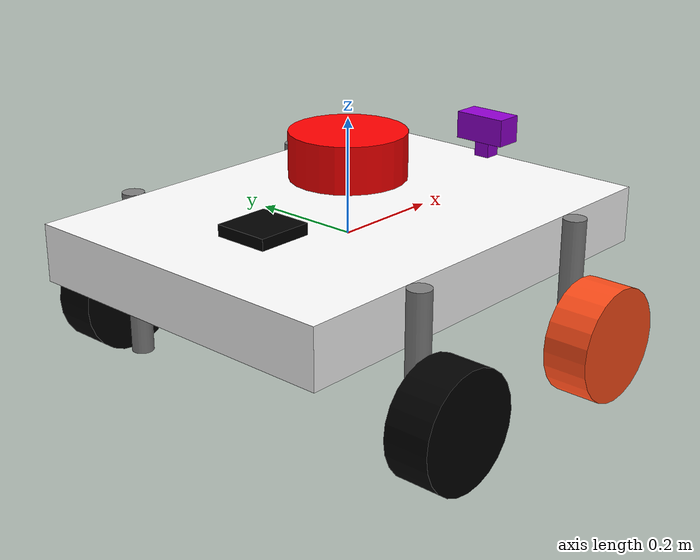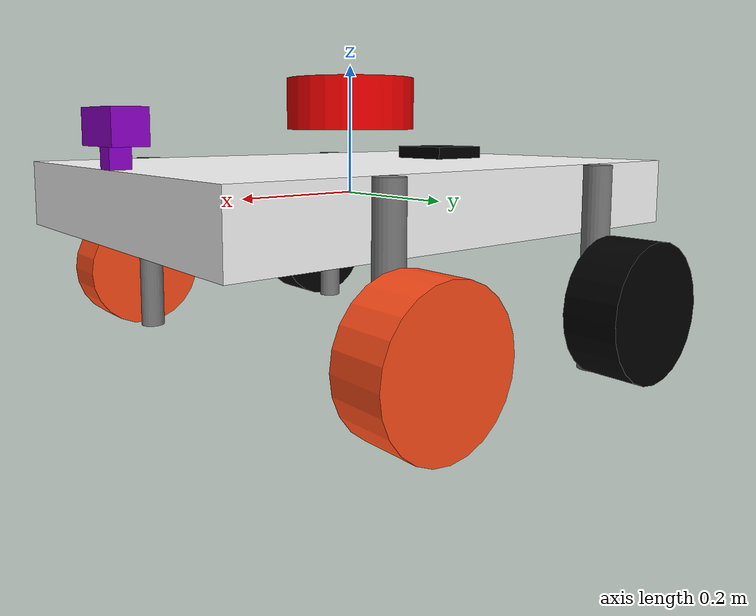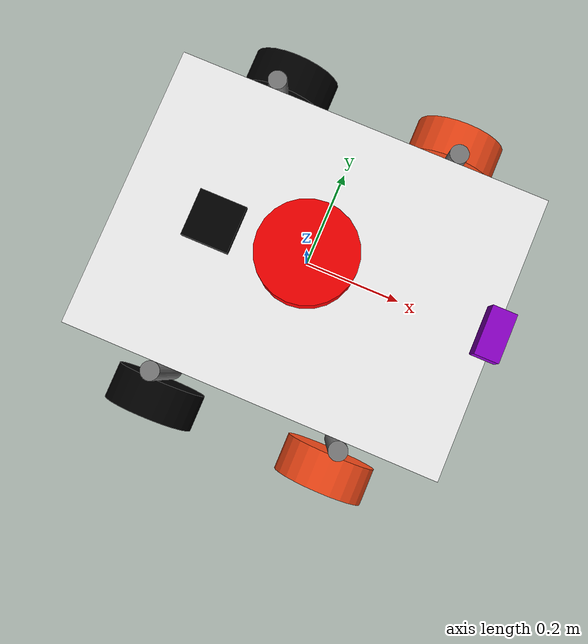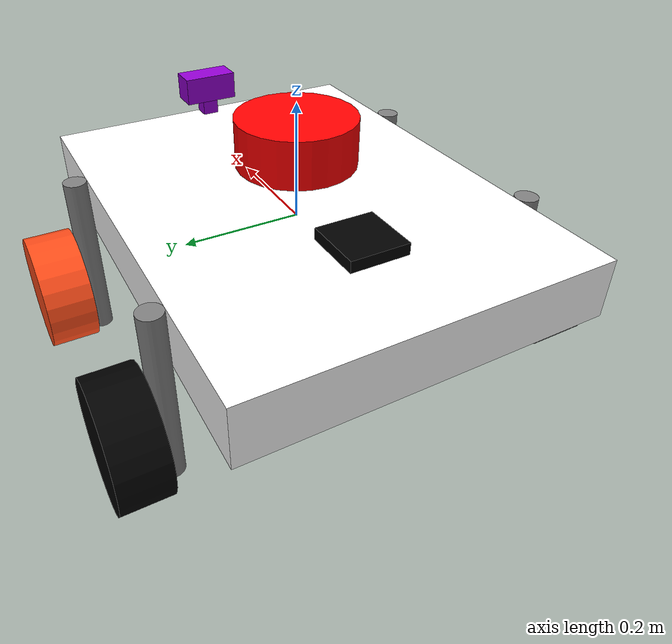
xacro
<?xml version="1.0"?>
<robot xmlns:xacro="http://www.ros.org/wiki/xacro" name="zulu_robot">

    <!-- Example link -->
    <xacro:include filename="$(find charlie_description)/macros/properties.xacro"/>
    <xacro:include filename="robot_core.xacro"/>
    <!-- Sensors -->
    <xacro:include filename="$(find charlie_description)/sensors/lidar.xacro"/><!-- Lidar sensor -->

    <xacro:include filename="$(find charlie_description)/sensors/camera.xacro"/> <!-- Camera sensor -->

    <xacro:include filename="$(find charlie_description)/sensors/imu.xacro"/> <!-- Camera sensor -->

    <!-- ros2_control -->
    <xacro:include filename="ros2_control.xacro"/>

</robot>

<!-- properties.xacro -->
<robot xmlns:xacro="http://www.ros.org/wiki/xacro">
    <!-- Color Definitions -->
    <material name="white">
        <color rgba= "1 1 1 1"/>
    </material>

    <material name="orange">
        <color rgba= "1 0.3 0.1 1"/>
    </material>

    <material name="blue">
        <color rgba= "0.2 0.2 1 1"/>
    </material>

    <material name="black">
        <color rgba= "0 0 0 1"/>
    </material>

    <material name="red">
        <color rgba= "1 0 0 1"/>
    </material>

    <material name="purple">
        <color rgba= "0.58 0.0 0.827 1"/>
    </material>

    <material name="gray">
        <color rgba= "0.5 0.5 0.5 1"/>
    </material>

</robot>

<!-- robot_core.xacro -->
<robot xmlns:xacro="http://www.ros.org/wiki/xacro">

    <!-- Include macros -->
    <xacro:include filename="$(find charlie_description)/macros/inertial_macros.xacro"/>

    <!-- Properties -->
    <xacro:property name="scale" value="2"/>

    <!-- Camera dimensions -->
    <xacro:property name="cam_base_x" value="${scale*0.015}"/>
    <xacro:property name="cam_base_y" value="${scale*0.015}"/>
    <xacro:property name="cam_base_z" value="${scale*0.015}"/>

    <xacro:property name="cam_x" value="${scale*0.025}"/>
    <xacro:property name="cam_y" value="${scale*0.05}"/>
    <xacro:property name="cam_z" value="${scale*0.025}"/>

    <!-- Robot dimensions -->
    <xacro:property name="rad_w" value="${scale*0.05}"/> <!-- Wheel radius 2(scale)*0.05 = 0.10-->
    <xacro:property name="le_w" value="${scale*0.04}"/>
    <xacro:property name="ly" value="${scale*0.3}"/> <!-- For steering & traction track -->
    <xacro:property name="lx" value="${scale*0.4}"/> <!-- For wheelbase -->
    <xacro:property name="lz" value="${scale*0.05}"/>
    <xacro:property name="offset" value="${scale*0.1}"/> <!-- For wheelbase -->

    <!-- Steering components -->
    <xacro:property name="steering_r" value="${scale*0.01}"/> <!-- For steering & traction track -->
    <xacro:property name="steering_l" value="${scale*0.15}"/>

    <!-- IMU dimensions -->
    <xacro:property name="imu_lx" value="${scale*0.05}"/>
    <xacro:property name="imu_ly" value="${scale*0.05}"/>
    <xacro:property name="imu_lz" value="${scale*0.01}"/>

    <!-- Macros -->
    <xacro:macro name="wheel_macro" params="p_name p_radius p_length p_color p_mass">
        <link name="${p_name}">
            <visual>
                <geometry>
                    <cylinder radius="${p_radius}" length="${p_length}"/>
                </geometry>
                <material name="${p_color}"/>
                <origin xyz="0 0 0" rpy="0 0 0"/>
            </visual>
            <collision>
                <geometry>
                    <cylinder radius="${p_radius}" length="${p_length}"/>
                </geometry>
                <origin xyz="0 0 0" rpy="0 0 0"/>
            </collision>
            <xacro:inertial_cylinder mass="${p_mass}" length="${p_length}" radius="${p_radius}">
                <origin xyz="0 0 0" rpy="0 0 0"/>
            </xacro:inertial_cylinder>
        </link>
    </xacro:macro>

    <xacro:macro name="steering_macro" params="p_name p_radius p_length p_color p_mass">
        <link name="${p_name}">
            <visual>
                <origin xyz="0.0 0 0"/>
                <geometry>
                    <cylinder radius="${p_radius}" length="${p_length}"/>
                </geometry>
                <material name="${p_color}"/>
            </visual>
            <collision>
                <origin xyz="0 0 0"/>
                <geometry>
                    <cylinder radius="${p_radius}" length="${p_length}"/>
                </geometry>
            </collision>
            <xacro:inertial_cylinder mass="${p_mass}" length="${p_length}" radius="${p_radius}">
                <origin xyz="0 0 0" rpy="0 0 0"/>
            </xacro:inertial_cylinder>
        </link>
    </xacro:macro>

    <!-- Base Links -->
    <link name="base_link">
    </link>

    <!-- Chassis -->
    <link name="chassis">
        <visual>
            <origin xyz="0 0 0"/>
            <geometry>
                <box size="${lx} ${ly} ${lz}"/>
            </geometry>
            <material name="white"/>
        </visual>
        <collision>
            <origin xyz="0 0 0"/>
            <geometry>
               <box size="${lx} ${ly} ${lz}"/>
            </geometry>
        </collision>
        <xacro:inertial_box mass="5.0" x="${lx}" y="${ly}" z="${lz}">
            <origin xyz="0 0 0" rpy="0 0 0"/>
        </xacro:inertial_box>
    </link>

    <!-- Steering Links -->
    <xacro:steering_macro p_name="left_steering_link"
                         p_radius="${steering_r}"
                         p_length="${steering_l}"
                         p_color="gray"
                         p_mass="0.1"/>

    <xacro:steering_macro p_name="right_steering_link"
                         p_radius="${steering_r}"
                         p_length="${steering_l}"
                         p_color="gray"
                         p_mass="0.1"/>

    <xacro:steering_macro p_name="left_rear_steering_link"
                         p_radius="${steering_r}"
                         p_length="${steering_l}"
                         p_color="gray"
                         p_mass="0.1"/>

    <xacro:steering_macro p_name="right_rear_steering_link"
                         p_radius="${steering_r}"
                         p_length="${steering_l}"
                         p_color="gray"
                         p_mass="0.1"/>

    <!-- Wheel Links -->
    <xacro:wheel_macro p_name="left_front_wheel"
                      p_radius="${rad_w}"
                      p_length="${le_w}"
                      p_color="orange"
                      p_mass="1.0"/>

    <xacro:wheel_macro p_name="right_front_wheel"
                      p_radius="${rad_w}"
                      p_length="${le_w}"
                      p_color="orange"
                      p_mass="1.0"/>

    <xacro:wheel_macro p_name="left_rear_wheel"
                      p_radius="${rad_w}"
                      p_length="${le_w}"
                      p_color="black"
                      p_mass="1.0"/>

    <xacro:wheel_macro p_name="right_rear_wheel"
                      p_radius="${rad_w}"
                      p_length="${le_w}"
                      p_color="black"
                      p_mass="1.0"/>

    <!-- Joints -->
    <joint name="base_link_joint" type="fixed">
        <parent link="base_link"/>
        <child link="chassis"/>
        <origin xyz="0 0 0"/>
    </joint>

    <!-- Front Steering Joints -->
    <joint name="left_steering_wheel_joint" type="revolute"> <!-- Steering joint -->
        <parent link="chassis"/>
        <child link="left_steering_link"/>
        <origin xyz="${lx/2 - offset} ${ly/2+steering_r} -${lz}" rpy="0 0 0"/> <!-- For wheelbase --> <!-- For steering & traction track -->
        <axis xyz="0 0 1"/>
        <limit lower="-${pi/4}" upper="${pi/4}" effort="5.0" velocity="1.0"/>
        <dynamics damping="0.5" friction="0.0"/>
    </joint>

    <joint name="right_steering_wheel_joint" type="revolute"> <!-- Steering joint -->
        <parent link="chassis"/>
        <child link="right_steering_link"/>
        <origin xyz="${lx/2 - offset} -${ly/2 + steering_r} -${lz}" rpy="0 0 0"/> <!-- For steering & traction track -->
        <axis xyz="0 0 1"/>
        <limit lower="-${pi/4}" upper="${pi/4}" effort="5.0" velocity="1.0"/>
        <dynamics damping="0.5" friction="0.0"/>
    </joint>

    <!-- Rear Steering Joints (Fixed) -->
    <joint name="left_rear_steering_joint" type="fixed">
        <parent link="chassis"/>
        <child link="left_rear_steering_link"/>
        <origin xyz="-${lx/2-offset} ${ly/2+steering_r} -${lz}" rpy="0 0 0"/> <!-- For wheelbase --> <!-- For steering & traction track -->
    </joint>

    <joint name="right_rear_steering_joint" type="fixed">
        <parent link="chassis"/>
        <child link="right_rear_steering_link"/>
        <origin xyz="-${lx/2-offset} -${ly/2+steering_r} -${lz}" rpy="0 0 0"/> <!-- For wheelbase --> <!-- For steering & traction track -->
    </joint>

    <!-- Wheel Joints -->
    <joint name="left_front_wheel_joint" type="continuous">
        <parent link="left_steering_link"/>
        <child link="left_front_wheel"/>
        <origin xyz="0.0 ${le_w/2+steering_r} -${steering_l/2-rad_w}" rpy="${pi/2} 0 0"/>
        <axis xyz="0 0 -1"/>
        <dynamics damping="0.2" friction="0.0"/>
    </joint>

    <joint name="right_front_wheel_joint" type="continuous">
        <parent link="right_steering_link"/>
        <child link="right_front_wheel"/>
        <origin xyz="0.0 -${le_w/2+steering_r} -${steering_l/2-rad_w}" rpy="${pi/2} 0 0"/>
        <axis xyz="0 0 -1"/>
        <dynamics damping="0.2" friction="0.0"/>
    </joint>

    <joint name="left_rear_wheel_joint" type="continuous"> <!-- Traction joint -->
        <parent link="left_rear_steering_link"/>
        <child link="left_rear_wheel"/>
        <origin xyz="0.0 ${le_w/2+steering_r} -${steering_l/2-rad_w}" rpy="${pi/2} 0 0"/>
        <axis xyz="0 0 -1"/>
        <dynamics damping="0.2" friction="0.0"/>
    </joint>

    <joint name="right_rear_wheel_joint" type="continuous"> <!-- Traction joint -->
        <parent link="right_rear_steering_link"/>
        <child link="right_rear_wheel"/>
        <origin xyz="0.0 -${le_w/2+steering_r} -${steering_l/2-rad_w}" rpy="${pi/2} 0 0"/>
        <axis xyz="0 0 -1"/>
        <dynamics damping="0.2" friction="0.0"/>
    </joint>

</robot>

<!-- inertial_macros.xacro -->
<robot xmlns:xacro="http://www.ros.org/wiki/xacro" >

    <!-- Specify some standard inertial calculations https://en.wikipedia.org/wiki/List_of_moments_of_inertia -->
    <!-- These make use of xacro's mathematical functionality -->

    <xacro:macro name="inertial_sphere" params="mass radius *origin">
        <inertial>
            <xacro:insert_block name="origin"/>
            <mass value="${mass}" />
            <inertia ixx="${(2/5) * mass * (radius*radius)}" ixy="0.0" ixz="0.0"
                    iyy="${(2/5) * mass * (radius*radius)}" iyz="0.0"
                    izz="${(2/5) * mass * (radius*radius)}" />
        </inertial>
    </xacro:macro>

    <xacro:macro name="inertial_box" params="mass x y z *origin">
        <inertial>
            <xacro:insert_block name="origin"/>
            <mass value="${mass}" />
            <inertia ixx="${(1/12) * mass * (y*y+z*z)}" ixy="0.0" ixz="0.0"
                    iyy="${(1/12) * mass * (x*x+z*z)}" iyz="0.0"
                    izz="${(1/12) * mass * (x*x+y*y)}" />
        </inertial>
    </xacro:macro>

    <xacro:macro name="inertial_cylinder" params="mass length radius *origin">
        <inertial>
            <xacro:insert_block name="origin"/>
            <mass value="${mass}" />
            <inertia ixx="${(1/12) * mass * (3*radius*radius + length*length)}" ixy="0.0" ixz="0.0"
                    iyy="${(1/12) * mass * (3*radius*radius + length*length)}" iyz="0.0"
                    izz="${(1/2) * mass * (radius*radius)}" />
        </inertial>
    </xacro:macro>
</robot>

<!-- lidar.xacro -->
<robot xmlns:xacro="http://www.ros.org/wiki/xacro" >

    <!-- Lidar link -->
    <link name="lidar_link">
         <visual>
            <geometry>
                <cylinder radius="${rad_w}" length="${le_w}"/>
            </geometry>
            <material name="red"/>
        </visual>
        <collision>
            <geometry>
                <cylinder radius="${rad_w}" length="${le_w}"/>
            </geometry>
        </collision>
        <xacro:inertial_cylinder mass="0.1" length="${le_w}" radius="${rad_w}">
            <origin xyz="0 0 0" rpy="0 0 0"/>
        </xacro:inertial_cylinder>
    </link>

    <joint name="lidar_chassis_joint" type="fixed">
        <parent link="chassis"/>
        <child link="lidar_link"/>
        <origin xyz="0 0 ${lz+le_w/2}" rpy="0 0 0"/>
    </joint>

    <gazebo reference="lidar_link">
    <sensor name="lidar" type="gpu_lidar">
        <always_on>true</always_on>
        <update_rate>10</update_rate>
        <visualize>true</visualize>
        <topic>scan</topic>
        <gz_frame_id>lidar_link</gz_frame_id>

        <lidar>
        <scan>
            <horizontal>
            <samples>720</samples>
            <min_angle>-3.14159</min_angle>
            <max_angle>3.14159</max_angle>
            </horizontal>
        </scan>
        <range>
            <min>0.12</min>
            <max>12.0</max>
        </range>
        </lidar>
    </sensor>
    </gazebo>

</robot>

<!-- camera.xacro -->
<robot xmlns:xacro="http://www.ros.org/wiki/xacro" >

    <!-- camera_base link -->

    <link name="camera_base_link">
         <visual>
            <geometry>
                <box size="${cam_base_x} ${cam_base_y} ${cam_base_z}"/>
            </geometry>
            <material name="purple"/>
        </visual>
        <collision>
            <geometry>
                <box size="${cam_base_x} ${cam_base_y} ${cam_base_z}"/>
            </geometry>
        </collision>
        <xacro:inertial_box mass="0.1" x="${cam_base_x}" y="${cam_base_y}" z="${cam_base_z}">
            <origin xyz="0 0 0" rpy="0 0 0"/>
        </xacro:inertial_box>
    </link>

   <!-- camera link -->
    <link name="camera_link">
         <visual>
            <geometry>
                <box size="${cam_x} ${cam_y} ${cam_z}"/>
            </geometry>
            <material name="purple"/>
        </visual>
        <collision>
            <geometry>
                <box size="${cam_x} ${cam_y} ${cam_z}"/>
            </geometry>
        </collision>
        <xacro:inertial_box mass="0.1" x="${cam_x}" y="${cam_y}" z="${cam_z}">
            <origin xyz="0 0 0" rpy="0 0 0"/>
        </xacro:inertial_box>
    </link>

    <joint name="camera_camera_base_joint" type="fixed">
        <parent link="camera_base_link"/>
        <child link="camera_link"/>
        <origin xyz="0 0 ${cam_base_z/2+cam_z/2}" rpy="0 0 0"/>
    </joint>

    <joint name="camera_base_chassis_joint" type="fixed">
        <parent link="chassis"/>
        <child link="camera_base_link"/>
        <origin xyz="${lx/2-cam_base_x/2} 0 ${lz/2+cam_base_z/2}" rpy="0 0 0"/>
    </joint>

    <link name="camera_optical_link"/>

    <joint name="camera_camera_link_joint" type="fixed">
        <parent link="camera_link"/>
        <child link="camera_optical_link"/>
        <origin xyz="0 0 0" rpy="-${pi/2} 0 -${pi/2}"/>
    </joint>

    <!-- Gazebo Camera Sensor -->
    <gazebo reference="camera_link">
        <sensor name="camera" type="camera">
            <always_on>true</always_on>
            <update_rate>30.0</update_rate> <visualize>true</visualize>     <topic>camera/image_raw</topic> <gz_frame_id>camera_optical_link</gz_frame_id>

            <camera>
                <horizontal_fov>1.089</horizontal_fov> <image>
                    <width>640</width>
                    <height>480</height>
                    <format>R8G8B8</format>
                </image>
                <clip>
                    <near>0.05</near>
                    <far>8.0</far>
                </clip>
            </camera>
        </sensor>
    </gazebo>

</robot>

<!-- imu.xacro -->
<robot xmlns:xacro="http://www.ros.org/wiki/xacro" >

    <link name="imu_link">
        <visual>
            <geometry>
                <box size="${imu_lx} ${imu_ly} ${imu_lz}"/>
            </geometry>
            <material name="orange">
                <color rgba="0 0 0 1"/>
            </material>
        </visual>
        <collision>
            <geometry>
                <box size="${imu_lx} ${imu_ly} ${imu_lz}"/>
            </geometry>
        </collision>
        <xacro:inertial_box mass="0.01" x="${imu_lx}" y="${imu_ly}" z="${imu_lz}">
            <origin xyz="0 0 0" rpy="0 0 0"/>
        </xacro:inertial_box>
    </link>

    <joint name="imu_joint" type="fixed">
        <parent link="chassis"/>
        <child link="imu_link"/>
        <origin xyz="-${lx/4 } 0 ${lz/2 + imu_lz/2}" rpy="0 0 0"/>
    </joint>

    <gazebo reference="imu_link">
        <gravity>true</gravity>
        <sensor name="imu_sensor" type="imu">
            <always_on>true</always_on>
            <update_rate>100</update_rate> <visualize>true</visualize>
            <topic>imu</topic>
            <gz_frame_id>imu_link</gz_frame_id>

            <imu>
                <angular_velocity>
                    <x>
                        <noise type="gaussian">
                            <mean>0.0</mean>
                            <stddev>2e-4</stddev>
                        </noise>
                    </x>
                    <y>
                        <noise type="gaussian">
                            <mean>0.0</mean>
                            <stddev>2e-4</stddev>
                        </noise>
                    </y>
                    <z>
                        <noise type="gaussian">
                            <mean>0.0</mean>
                            <stddev>2e-4</stddev>
                        </noise>
                    </z>
                </angular_velocity>
                <linear_acceleration>
                    <x>
                        <noise type="gaussian">
                            <mean>0.0</mean>
                            <stddev>1.7e-2</stddev>
                        </noise>
                    </x>
                    <y>
                        <noise type="gaussian">
                            <mean>0.0</mean>
                            <stddev>1.7e-2</stddev>
                        </noise>
                    </y>
                    <z>
                        <noise type="gaussian">
                            <mean>0.0</mean>
                            <stddev>1.7e-2</stddev>
                        </noise>
                    </z>
                </linear_acceleration>
            </imu>
        </sensor>
    </gazebo>

</robot>
